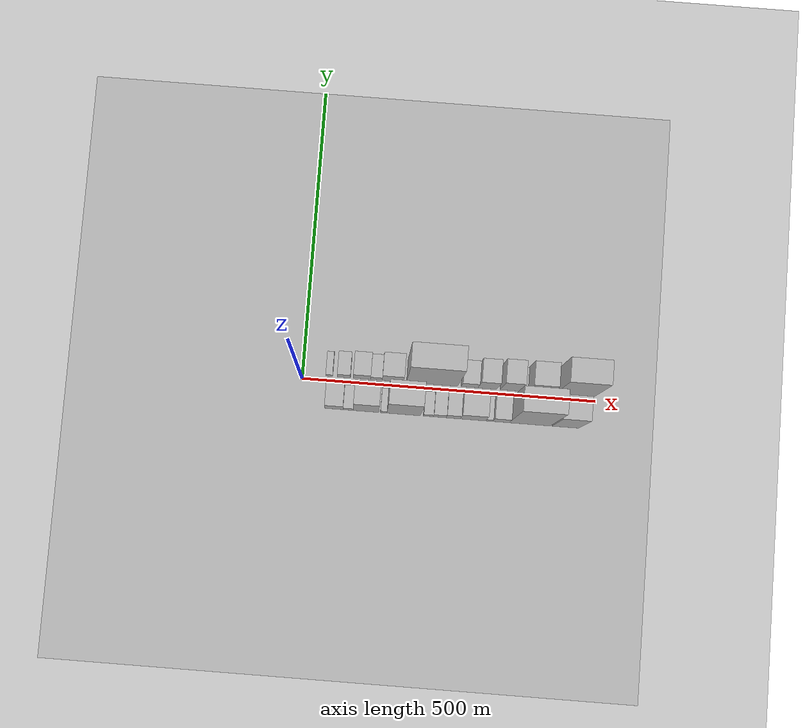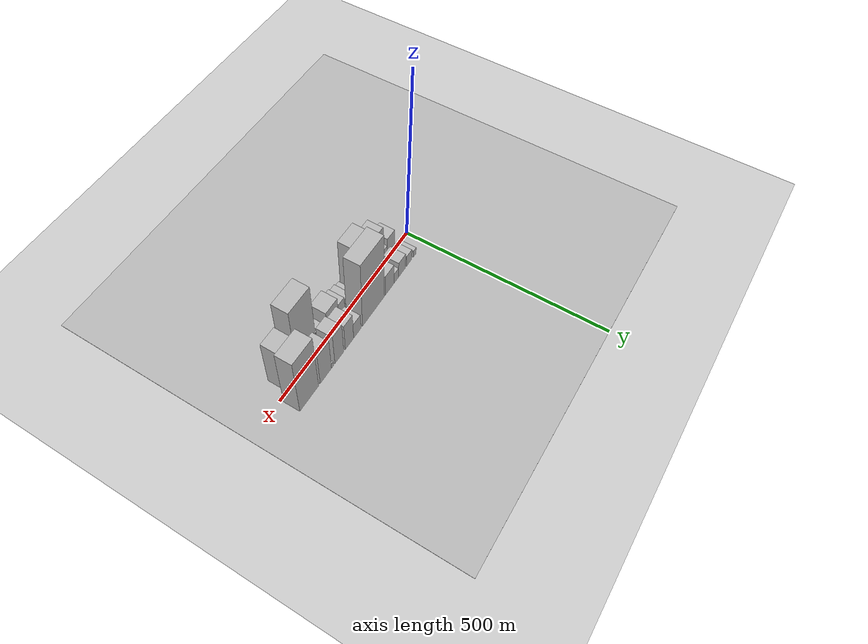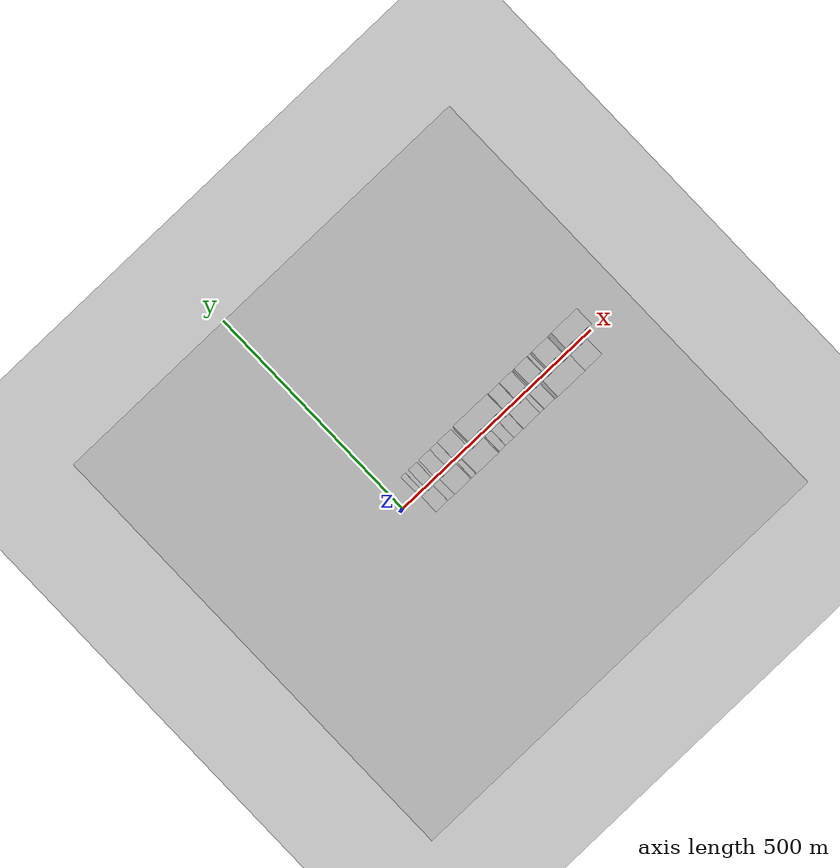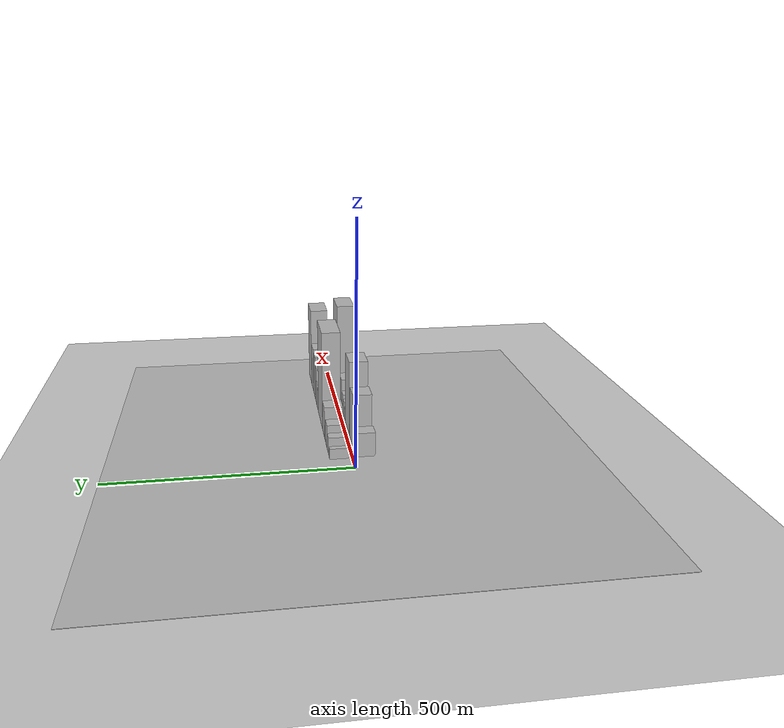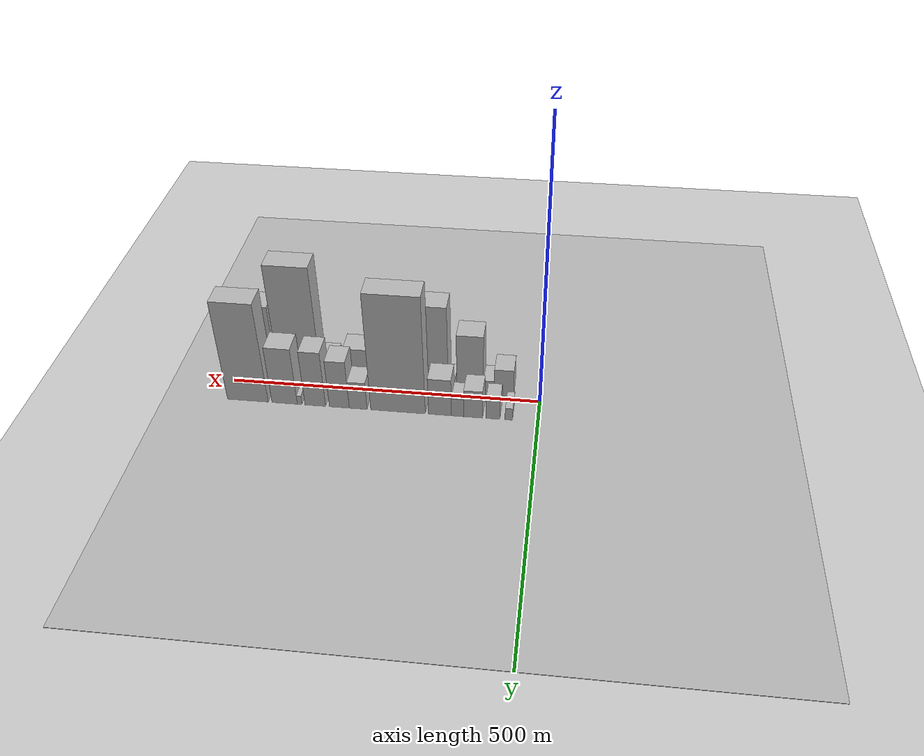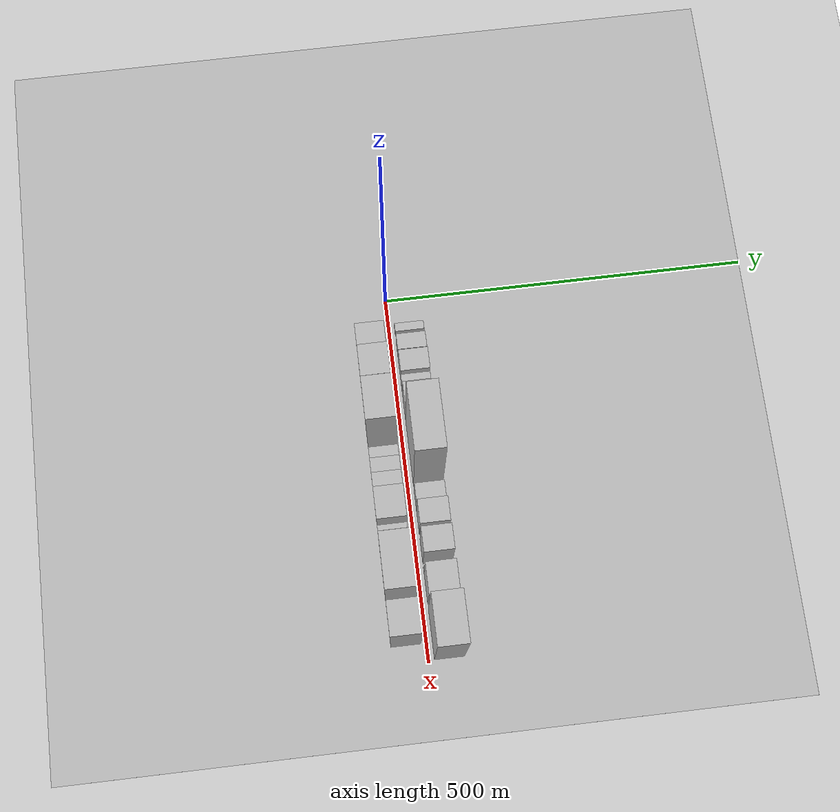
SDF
<?xml version="1.0" encoding="utf-8"?>

<sdf version="1.6">

   <world name="default">

      <gui fullscreen="0">

         <camera name="user_camera">

            <pose>-15 0 4.57585 0 0 0</pose>

            <view_controller>orbit</view_controller>

         </camera>

      </gui>

      <scene>

         <sky>

           <clouds>

             <speed>12</speed>

           </clouds>

         </sky>

         <ambient>0.4 0.4 0.4 1</ambient>

         <background>0.7 0.7 0.7 1</background>

         <shadows>1</shadows>

      </scene>

      <gravity>0 0 -9.8066</gravity>

      <magnetic_field>6e-06 2.3e-05 -4.2e-05</magnetic_field>

      <physics default="0" name="default_physics" type="ode">

         <ode>

            <solver>

               <type>quick</type>

               <iters>10</iters>

               <sor>1.0</sor>

               <use_dynamic_moi_rescaling>0</use_dynamic_moi_rescaling>

            </solver>

            <constraints>

               <cfm>0</cfm>

               <erp>0.2</erp>

               <contact_max_correcting_vel>100</contact_max_correcting_vel>

               <contact_surface_layer>0.001</contact_surface_layer>

            </constraints>

         </ode>

         <max_step_size>0.004</max_step_size>

         <real_time_factor>1</real_time_factor>

         <real_time_update_rate>250</real_time_update_rate>

      </physics>

      <light name="sun" type="directional">

         <cast_shadows>1</cast_shadows>

         <pose>0 0 10 0 0 0</pose>

         <diffuse>0.8 0.8 0.8 1</diffuse>

         <specular>0.2 0.2 0.2 1</specular>

         <attenuation>

            <range>1000</range>

            <constant>0.9</constant>

            <linear>0.01</linear>

            <quadratic>0.001</quadratic>

         </attenuation>

         <direction>-0.5 0.1 -0.9</direction>

      </light>

      <include>

         <name>ground_plane_1</name>

         <uri>model://HANNAS_ground_plane</uri>

         <pose>0 0 0  0 0 0</pose>

      </include>

      <include>

         <name>ground_plane_2</name>

         <uri>model://HANNAS_ground_plane</uri>

         <pose>100 0 0  0 0 0</pose>

      </include>

      <model name="building_1">

         <static>1</static>

         <pose frame="">45.8817 27.5000 0 0.000000 0.000000 1.570796</pose>

         <link name="link">

            <pose frame="">0 0 12.00 0 0 0</pose>

            <collision name="collision">

               <geometry>

                  <box>

                     <size>40.0000 11.7634 24.0000</size>

                  </box>

               </geometry>

               <max_contacts>10</max_contacts>

               <surface>

                  <contact>

                     <ode/>

                  </contact>

                  <bounce/>

                  <friction>

                     <torsional>

                        <ode/>

                     </torsional>

                     <ode/>

                  </friction>

               </surface>

            </collision>

            <visual name="visual">

               <cast_shadows>0</cast_shadows>

               <geometry>

                  <box>

                     <size>40.0000 11.7634 24.0000</size>

                  </box>

               </geometry>

               <material>

                  <script>

                     <uri>model://HANNAS_wall/materials/scripts</uri>

                     <uri>model://HANNAS_wall/materials/textures</uri>

                     <name>vrc/HANNAS_wall</name>

                  </script>

               </material>

            </visual>

            <self_collide>0</self_collide>

            <enable_wind>0</enable_wind>

            <kinematic>0</kinematic>

         </link>

      </model>

      <model name="building_2">

         <static>1</static>

         <pose frame="">70.8837 27.5000 0 0.000000 0.000000 1.570796</pose>

         <link name="link">

            <pose frame="">0 0 19.50 0 0 0</pose>

            <collision name="collision">

               <geometry>

                  <box>

                     <size>40.0000 22.2405 39.0000</size>

                  </box>

               </geometry>

               <max_contacts>10</max_contacts>

               <surface>

                  <contact>

                     <ode/>

                  </contact>

                  <bounce/>

                  <friction>

                     <torsional>

                        <ode/>

                     </torsional>

                     <ode/>

                  </friction>

               </surface>

            </collision>

            <visual name="visual">

               <cast_shadows>0</cast_shadows>

               <geometry>

                  <box>

                     <size>40.0000 22.2405 39.0000</size>

                  </box>

               </geometry>

               <material>

                  <script>

                     <uri>model://HANNAS_wall/materials/scripts</uri>

                     <uri>model://HANNAS_wall/materials/textures</uri>

                     <name>vrc/HANNAS_wall</name>

                  </script>

               </material>

            </visual>

            <self_collide>0</self_collide>

            <enable_wind>0</enable_wind>

            <kinematic>0</kinematic>

         </link>

      </model>

      <model name="building_3">

         <static>1</static>

         <pose frame="">101.7280 27.5000 0 0.000000 0.000000 1.570796</pose>

         <link name="link">

            <pose frame="">0 0 27.00 0 0 0</pose>

            <collision name="collision">

               <geometry>

                  <box>

                     <size>40.0000 29.4482 54.0000</size>

                  </box>

               </geometry>

               <max_contacts>10</max_contacts>

               <surface>

                  <contact>

                     <ode/>

                  </contact>

                  <bounce/>

                  <friction>

                     <torsional>

                        <ode/>

                     </torsional>

                     <ode/>

                  </friction>

               </surface>

            </collision>

            <visual name="visual">

               <cast_shadows>0</cast_shadows>

               <geometry>

                  <box>

                     <size>40.0000 29.4482 54.0000</size>

                  </box>

               </geometry>

               <material>

                  <script>

                     <uri>model://HANNAS_wall/materials/scripts</uri>

                     <uri>model://HANNAS_wall/materials/textures</uri>

                     <name>vrc/HANNAS_wall</name>

                  </script>

               </material>

            </visual>

            <self_collide>0</self_collide>

            <enable_wind>0</enable_wind>

            <kinematic>0</kinematic>

         </link>

      </model>

      <model name="building_4">

         <static>1</static>

         <pose frame="">126.2470 27.5000 0 0.000000 0.000000 1.570796</pose>

         <link name="link">

            <pose frame="">0 0 18.00 0 0 0</pose>

            <collision name="collision">

               <geometry>

                  <box>

                     <size>40.0000 19.5898 36.0000</size>

                  </box>

               </geometry>

               <max_contacts>10</max_contacts>

               <surface>

                  <contact>

                     <ode/>

                  </contact>

                  <bounce/>

                  <friction>

                     <torsional>

                        <ode/>

                     </torsional>

                     <ode/>

                  </friction>

               </surface>

            </collision>

            <visual name="visual">

               <cast_shadows>0</cast_shadows>

               <geometry>

                  <box>

                     <size>40.0000 19.5898 36.0000</size>

                  </box>

               </geometry>

               <material>

                  <script>

                     <uri>model://HANNAS_wall/materials/scripts</uri>

                     <uri>model://HANNAS_wall/materials/textures</uri>

                     <name>vrc/HANNAS_wall</name>

                  </script>

               </material>

            </visual>

            <self_collide>0</self_collide>

            <enable_wind>0</enable_wind>

            <kinematic>0</kinematic>

         </link>

      </model>

      <model name="building_5">

         <static>1</static>

         <pose frame="">154.2567 27.5000 0 0.000000 0.000000 1.570796</pose>

         <link name="link">

            <pose frame="">0 0 36.00 0 0 0</pose>

            <collision name="collision">

               <geometry>

                  <box>

                     <size>40.0000 36.4296 72.0000</size>

                  </box>

               </geometry>

               <max_contacts>10</max_contacts>

               <surface>

                  <contact>

                     <ode/>

                  </contact>

                  <bounce/>

                  <friction>

                     <torsional>

                        <ode/>

                     </torsional>

                     <ode/>

                  </friction>

               </surface>

            </collision>

            <visual name="visual">

               <cast_shadows>0</cast_shadows>

               <geometry>

                  <box>

                     <size>40.0000 36.4296 72.0000</size>

                  </box>

               </geometry>

               <material>

                  <script>

                     <uri>model://HANNAS_wall/materials/scripts</uri>

                     <uri>model://HANNAS_wall/materials/textures</uri>

                     <name>vrc/HANNAS_wall</name>

                  </script>

               </material>

            </visual>

            <self_collide>0</self_collide>

            <enable_wind>0</enable_wind>

            <kinematic>0</kinematic>

         </link>

      </model>

      <model name="building_6">

         <static>1</static>

         <pose frame="">221.0093 27.5000 0 0.000000 0.000000 1.570796</pose>

         <link name="link">

            <pose frame="">0 0 112.50 0 0 0</pose>

            <collision name="collision">

               <geometry>

                  <box>

                     <size>40.0000 87.0757 225.0000</size>

                  </box>

               </geometry>

               <max_contacts>10</max_contacts>

               <surface>

                  <contact>

                     <ode/>

                  </contact>

                  <bounce/>

                  <friction>

                     <torsional>

                        <ode/>

                     </torsional>

                     <ode/>

                  </friction>

               </surface>

            </collision>

            <visual name="visual">

               <cast_shadows>0</cast_shadows>

               <geometry>

                  <box>

                     <size>40.0000 87.0757 225.0000</size>

                  </box>

               </geometry>

               <material>

                  <script>

                     <uri>model://HANNAS_wall/materials/scripts</uri>

                     <uri>model://HANNAS_wall/materials/textures</uri>

                     <name>vrc/HANNAS_wall</name>

                  </script>

               </material>

            </visual>

            <self_collide>0</self_collide>

            <enable_wind>0</enable_wind>

            <kinematic>0</kinematic>

         </link>

      </model>

      <model name="building_7">

         <static>1</static>

         <pose frame="">284.8641 27.5000 0 0.000000 0.000000 1.570796</pose>

         <link name="link">

            <pose frame="">0 0 27.00 0 0 0</pose>

            <collision name="collision">

               <geometry>

                  <box>

                     <size>40.0000 28.6338 54.0000</size>

                  </box>

               </geometry>

               <max_contacts>10</max_contacts>

               <surface>

                  <contact>

                     <ode/>

                  </contact>

                  <bounce/>

                  <friction>

                     <torsional>

                        <ode/>

                     </torsional>

                     <ode/>

                  </friction>

               </surface>

            </collision>

            <visual name="visual">

               <cast_shadows>0</cast_shadows>

               <geometry>

                  <box>

                     <size>40.0000 28.6338 54.0000</size>

                  </box>

               </geometry>

               <material>

                  <script>

                     <uri>model://HANNAS_wall/materials/scripts</uri>

                     <uri>model://HANNAS_wall/materials/textures</uri>

                     <name>vrc/HANNAS_wall</name>

                  </script>

               </material>

            </visual>

            <self_collide>0</self_collide>

            <enable_wind>0</enable_wind>

            <kinematic>0</kinematic>

         </link>

      </model>

      <model name="building_8">

         <static>1</static>

         <pose frame="">315.1698 27.5000 0 0.000000 0.000000 1.570796</pose>

         <link name="link">

            <pose frame="">0 0 46.50 0 0 0</pose>

            <collision name="collision">

               <geometry>

                  <box>

                     <size>40.0000 31.9778 93.0000</size>

                  </box>

               </geometry>

               <max_contacts>10</max_contacts>

               <surface>

                  <contact>

                     <ode/>

                  </contact>

                  <bounce/>

                  <friction>

                     <torsional>

                        <ode/>

                     </torsional>

                     <ode/>

                  </friction>

               </surface>

            </collision>

            <visual name="visual">

               <cast_shadows>0</cast_shadows>

               <geometry>

                  <box>

                     <size>40.0000 31.9778 93.0000</size>

                  </box>

               </geometry>

               <material>

                  <script>

                     <uri>model://HANNAS_wall/materials/scripts</uri>

                     <uri>model://HANNAS_wall/materials/textures</uri>

                     <name>vrc/HANNAS_wall</name>

                  </script>

               </material>

            </visual>

            <self_collide>0</self_collide>

            <enable_wind>0</enable_wind>

            <kinematic>0</kinematic>

         </link>

      </model>

      <model name="building_9">

         <static>1</static>

         <pose frame="">353.8377 27.5000 0 0.000000 0.000000 1.570796</pose>

         <link name="link">

            <pose frame="">0 0 54.00 0 0 0</pose>

            <collision name="collision">

               <geometry>

                  <box>

                     <size>40.0000 33.3580 108.0000</size>

                  </box>

               </geometry>

               <max_contacts>10</max_contacts>

               <surface>

                  <contact>

                     <ode/>

                  </contact>

                  <bounce/>

                  <friction>

                     <torsional>

                        <ode/>

                     </torsional>

                     <ode/>

                  </friction>

               </surface>

            </collision>

            <visual name="visual">

               <cast_shadows>0</cast_shadows>

               <geometry>

                  <box>

                     <size>40.0000 33.3580 108.0000</size>

                  </box>

               </geometry>

               <material>

                  <script>

                     <uri>model://HANNAS_wall/materials/scripts</uri>

                     <uri>model://HANNAS_wall/materials/textures</uri>

                     <name>vrc/HANNAS_wall</name>

                  </script>

               </material>

            </visual>

            <self_collide>0</self_collide>

            <enable_wind>0</enable_wind>

            <kinematic>0</kinematic>

         </link>

      </model>

      <model name="building_10">

         <static>1</static>

         <pose frame="">379.2483 27.5000 0 0.000000 0.000000 1.570796</pose>

         <link name="link">

            <pose frame="">0 0 9.00 0 0 0</pose>

            <collision name="collision">

               <geometry>

                  <box>

                     <size>40.0000 7.4632 18.0000</size>

                  </box>

               </geometry>

               <max_contacts>10</max_contacts>

               <surface>

                  <contact>

                     <ode/>

                  </contact>

                  <bounce/>

                  <friction>

                     <torsional>

                        <ode/>

                     </torsional>

                     <ode/>

                  </friction>

               </surface>

            </collision>

            <visual name="visual">

               <cast_shadows>0</cast_shadows>

               <geometry>

                  <box>

                     <size>40.0000 7.4632 18.0000</size>

                  </box>

               </geometry>

               <material>

                  <script>

                     <uri>model://HANNAS_wall/materials/scripts</uri>

                     <uri>model://HANNAS_wall/materials/textures</uri>

                     <name>vrc/HANNAS_wall</name>

                  </script>

               </material>

            </visual>

            <self_collide>0</self_collide>

            <enable_wind>0</enable_wind>

            <kinematic>0</kinematic>

         </link>

      </model>

      <model name="building_11">

         <static>1</static>

         <pose frame="">403.6508 27.5000 0 0.000000 0.000000 1.570796</pose>

         <link name="link">

            <pose frame="">0 0 55.50 0 0 0</pose>

            <collision name="collision">

               <geometry>

                  <box>

                     <size>40.0000 41.3420 111.0000</size>

                  </box>

               </geometry>

               <max_contacts>10</max_contacts>

               <surface>

                  <contact>

                     <ode/>

                  </contact>

                  <bounce/>

                  <friction>

                     <torsional>

                        <ode/>

                     </torsional>

                     <ode/>

                  </friction>

               </surface>

            </collision>

            <visual name="visual">

               <cast_shadows>0</cast_shadows>

               <geometry>

                  <box>

                     <size>40.0000 41.3420 111.0000</size>

                  </box>

               </geometry>

               <material>

                  <script>

                     <uri>model://HANNAS_wall/materials/scripts</uri>

                     <uri>model://HANNAS_wall/materials/textures</uri>

                     <name>vrc/HANNAS_wall</name>

                  </script>

               </material>

            </visual>

            <self_collide>0</self_collide>

            <enable_wind>0</enable_wind>

            <kinematic>0</kinematic>

         </link>

      </model>

      <model name="building_12">

         <static>1</static>

         <pose frame="">463.6004 27.5000 0 0.000000 0.000000 1.570796</pose>

         <link name="link">

            <pose frame="">0 0 96.00 0 0 0</pose>

            <collision name="collision">

               <geometry>

                  <box>

                     <size>40.0000 66.5572 192.0000</size>

                  </box>

               </geometry>

               <max_contacts>10</max_contacts>

               <surface>

                  <contact>

                     <ode/>

                  </contact>

                  <bounce/>

                  <friction>

                     <torsional>

                        <ode/>

                     </torsional>

                     <ode/>

                  </friction>

               </surface>

            </collision>

            <visual name="visual">

               <cast_shadows>0</cast_shadows>

               <geometry>

                  <box>

                     <size>40.0000 66.5572 192.0000</size>

                  </box>

               </geometry>

               <material>

                  <script>

                     <uri>model://HANNAS_wall/materials/scripts</uri>

                     <uri>model://HANNAS_wall/materials/textures</uri>

                     <name>vrc/HANNAS_wall</name>

                  </script>

               </material>

            </visual>

            <self_collide>0</self_collide>

            <enable_wind>0</enable_wind>

            <kinematic>0</kinematic>

         </link>

      </model>

      <model name="building_13">

         <static>1</static>

         <pose frame="">58.5326 -27.5000 0 0.000000 0.000000 1.570796</pose>

         <link name="link">

            <pose frame="">0 0 27.00 0 0 0</pose>

            <collision name="collision">

               <geometry>

                  <box>

                     <size>40.0000 31.0651 54.0000</size>

                  </box>

               </geometry>

               <max_contacts>10</max_contacts>

               <surface>

                  <contact>

                     <ode/>

                  </contact>

                  <bounce/>

                  <friction>

                     <torsional>

                        <ode/>

                     </torsional>

                     <ode/>

                  </friction>

               </surface>

            </collision>

            <visual name="visual">

               <cast_shadows>0</cast_shadows>

               <geometry>

                  <box>

                     <size>40.0000 31.0651 54.0000</size>

                  </box>

               </geometry>

               <material>

                  <script>

                     <uri>model://HANNAS_wall/materials/scripts</uri>

                     <uri>model://HANNAS_wall/materials/textures</uri>

                     <name>vrc/HANNAS_wall</name>

                  </script>

               </material>

            </visual>

            <self_collide>0</self_collide>

            <enable_wind>0</enable_wind>

            <kinematic>0</kinematic>

         </link>

      </model>

      <model name="building_14">

         <static>1</static>

         <pose frame="">82.8570 -27.5000 0 0.000000 0.000000 1.570796</pose>

         <link name="link">

            <pose frame="">0 0 15.00 0 0 0</pose>

            <collision name="collision">

               <geometry>

                  <box>

                     <size>40.0000 17.5837 30.0000</size>

                  </box>

               </geometry>

               <max_contacts>10</max_contacts>

               <surface>

                  <contact>

                     <ode/>

                  </contact>

                  <bounce/>

                  <friction>

                     <torsional>

                        <ode/>

                     </torsional>

                     <ode/>

                  </friction>

               </surface>

            </collision>

            <visual name="visual">

               <cast_shadows>0</cast_shadows>

               <geometry>

                  <box>

                     <size>40.0000 17.5837 30.0000</size>

                  </box>

               </geometry>

               <material>

                  <script>

                     <uri>model://HANNAS_wall/materials/scripts</uri>

                     <uri>model://HANNAS_wall/materials/textures</uri>

                     <name>vrc/HANNAS_wall</name>

                  </script>

               </material>

            </visual>

            <self_collide>0</self_collide>

            <enable_wind>0</enable_wind>

            <kinematic>0</kinematic>

         </link>

      </model>

      <model name="building_15">

         <static>1</static>

         <pose frame="">112.9578 -27.5000 0 0.000000 0.000000 1.570796</pose>

         <link name="link">

            <pose frame="">0 0 58.50 0 0 0</pose>

            <collision name="collision">

               <geometry>

                  <box>

                     <size>40.0000 42.6180 117.0000</size>

                  </box>

               </geometry>

               <max_contacts>10</max_contacts>

               <surface>

                  <contact>

                     <ode/>

                  </contact>

                  <bounce/>

                  <friction>

                     <torsional>

                        <ode/>

                     </torsional>

                     <ode/>

                  </friction>

               </surface>

            </collision>

            <visual name="visual">

               <cast_shadows>0</cast_shadows>

               <geometry>

                  <box>

                     <size>40.0000 42.6180 117.0000</size>

                  </box>

               </geometry>

               <material>

                  <script>

                     <uri>model://HANNAS_wall/materials/scripts</uri>

                     <uri>model://HANNAS_wall/materials/textures</uri>

                     <name>vrc/HANNAS_wall</name>

                  </script>

               </material>

            </visual>

            <self_collide>0</self_collide>

            <enable_wind>0</enable_wind>

            <kinematic>0</kinematic>

         </link>

      </model>

      <model name="building_16">

         <static>1</static>

         <pose frame="">142.7805 -27.5000 0 0.000000 0.000000 1.570796</pose>

         <link name="link">

            <pose frame="">0 0 13.50 0 0 0</pose>

            <collision name="collision">

               <geometry>

                  <box>

                     <size>40.0000 11.0274 27.0000</size>

                  </box>

               </geometry>

               <max_contacts>10</max_contacts>

               <surface>

                  <contact>

                     <ode/>

                  </contact>

                  <bounce/>

                  <friction>

                     <torsional>

                        <ode/>

                     </torsional>

                     <ode/>

                  </friction>

               </surface>

            </collision>

            <visual name="visual">

               <cast_shadows>0</cast_shadows>

               <geometry>

                  <box>

                     <size>40.0000 11.0274 27.0000</size>

                  </box>

               </geometry>

               <material>

                  <script>

                     <uri>model://HANNAS_wall/materials/scripts</uri>

                     <uri>model://HANNAS_wall/materials/textures</uri>

                     <name>vrc/HANNAS_wall</name>

                  </script>

               </material>

            </visual>

            <self_collide>0</self_collide>

            <enable_wind>0</enable_wind>

            <kinematic>0</kinematic>

         </link>

      </model>

      <model name="building_17">

         <static>1</static>

         <pose frame="">176.7688 -27.5000 0 0.000000 0.000000 1.570796</pose>

         <link name="link">

            <pose frame="">0 0 84.00 0 0 0</pose>

            <collision name="collision">

               <geometry>

                  <box>

                     <size>40.0000 56.9493 168.0000</size>

                  </box>

               </geometry>

               <max_contacts>10</max_contacts>

               <surface>

                  <contact>

                     <ode/>

                  </contact>

                  <bounce/>

                  <friction>

                     <torsional>

                        <ode/>

                     </torsional>

                     <ode/>

                  </friction>

               </surface>

            </collision>

            <visual name="visual">

               <cast_shadows>0</cast_shadows>

               <geometry>

                  <box>

                     <size>40.0000 56.9493 168.0000</size>

                  </box>

               </geometry>

               <material>

                  <script>

                     <uri>model://HANNAS_wall/materials/scripts</uri>

                     <uri>model://HANNAS_wall/materials/textures</uri>

                     <name>vrc/HANNAS_wall</name>

                  </script>

               </material>

            </visual>

            <self_collide>0</self_collide>

            <enable_wind>0</enable_wind>

            <kinematic>0</kinematic>

         </link>

      </model>

      <model name="building_18">

         <static>1</static>

         <pose frame="">218.6372 -27.5000 0 0.000000 0.000000 1.570796</pose>

         <link name="link">

            <pose frame="">0 0 15.00 0 0 0</pose>

            <collision name="collision">

               <geometry>

                  <box>

                     <size>40.0000 16.7874 30.0000</size>

                  </box>

               </geometry>

               <max_contacts>10</max_contacts>

               <surface>

                  <contact>

                     <ode/>

                  </contact>

                  <bounce/>

                  <friction>

                     <torsional>

                        <ode/>

                     </torsional>

                     <ode/>

                  </friction>

               </surface>

            </collision>

            <visual name="visual">

               <cast_shadows>0</cast_shadows>

               <geometry>

                  <box>

                     <size>40.0000 16.7874 30.0000</size>

                  </box>

               </geometry>

               <material>

                  <script>

                     <uri>model://HANNAS_wall/materials/scripts</uri>

                     <uri>model://HANNAS_wall/materials/textures</uri>

                     <name>vrc/HANNAS_wall</name>

                  </script>

               </material>

            </visual>

            <self_collide>0</self_collide>

            <enable_wind>0</enable_wind>

            <kinematic>0</kinematic>

         </link>

      </model>

      <model name="building_19">

         <static>1</static>

         <pose frame="">237.8213 -27.5000 0 0.000000 0.000000 1.570796</pose>

         <link name="link">

            <pose frame="">0 0 19.50 0 0 0</pose>

            <collision name="collision">

               <geometry>

                  <box>

                     <size>40.0000 21.5809 39.0000</size>

                  </box>

               </geometry>

               <max_contacts>10</max_contacts>

               <surface>

                  <contact>

                     <ode/>

                  </contact>

                  <bounce/>

                  <friction>

                     <torsional>

                        <ode/>

                     </torsional>

                     <ode/>

                  </friction>

               </surface>

            </collision>

            <visual name="visual">

               <cast_shadows>0</cast_shadows>

               <geometry>

                  <box>

                     <size>40.0000 21.5809 39.0000</size>

                  </box>

               </geometry>

               <material>

                  <script>

                     <uri>model://HANNAS_wall/materials/scripts</uri>

                     <uri>model://HANNAS_wall/materials/textures</uri>

                     <name>vrc/HANNAS_wall</name>

                  </script>

               </material>

            </visual>

            <self_collide>0</self_collide>

            <enable_wind>0</enable_wind>

            <kinematic>0</kinematic>

         </link>

      </model>

      <model name="building_20">

         <static>1</static>

         <pose frame="">260.7178 -27.5000 0 0.000000 0.000000 1.570796</pose>

         <link name="link">

            <pose frame="">0 0 24.00 0 0 0</pose>

            <collision name="collision">

               <geometry>

                  <box>

                     <size>40.0000 24.2121 48.0000</size>

                  </box>

               </geometry>

               <max_contacts>10</max_contacts>

               <surface>

                  <contact>

                     <ode/>

                  </contact>

                  <bounce/>

                  <friction>

                     <torsional>

                        <ode/>

                     </torsional>

                     <ode/>

                  </friction>

               </surface>

            </collision>

            <visual name="visual">

               <cast_shadows>0</cast_shadows>

               <geometry>

                  <box>

                     <size>40.0000 24.2121 48.0000</size>

                  </box>

               </geometry>

               <material>

                  <script>

                     <uri>model://HANNAS_wall/materials/scripts</uri>

                     <uri>model://HANNAS_wall/materials/textures</uri>

                     <name>vrc/HANNAS_wall</name>

                  </script>

               </material>

            </visual>

            <self_collide>0</self_collide>

            <enable_wind>0</enable_wind>

            <kinematic>0</kinematic>

         </link>

      </model>

      <model name="building_21">

         <static>1</static>

         <pose frame="">294.3731 -27.5000 0 0.000000 0.000000 1.570796</pose>

         <link name="link">

            <pose frame="">0 0 37.50 0 0 0</pose>

            <collision name="collision">

               <geometry>

                  <box>

                     <size>40.0000 43.0985 75.0000</size>

                  </box>

               </geometry>

               <max_contacts>10</max_contacts>

               <surface>

                  <contact>

                     <ode/>

                  </contact>

                  <bounce/>

                  <friction>

                     <torsional>

                        <ode/>

                     </torsional>

                     <ode/>

                  </friction>

               </surface>

            </collision>

            <visual name="visual">

               <cast_shadows>0</cast_shadows>

               <geometry>

                  <box>

                     <size>40.0000 43.0985 75.0000</size>

                  </box>

               </geometry>

               <material>

                  <script>

                     <uri>model://HANNAS_wall/materials/scripts</uri>

                     <uri>model://HANNAS_wall/materials/textures</uri>

                     <name>vrc/HANNAS_wall</name>

                  </script>

               </material>

            </visual>

            <self_collide>0</self_collide>

            <enable_wind>0</enable_wind>

            <kinematic>0</kinematic>

         </link>

      </model>

      <model name="building_22">

         <static>1</static>

         <pose frame="">321.9104 -27.5000 0 0.000000 0.000000 1.570796</pose>

         <link name="link">

            <pose frame="">0 0 13.50 0 0 0</pose>

            <collision name="collision">

               <geometry>

                  <box>

                     <size>40.0000 11.9760 27.0000</size>

                  </box>

               </geometry>

               <max_contacts>10</max_contacts>

               <surface>

                  <contact>

                     <ode/>

                  </contact>

                  <bounce/>

                  <friction>

                     <torsional>

                        <ode/>

                     </torsional>

                     <ode/>

                  </friction>

               </surface>

            </collision>

            <visual name="visual">

               <cast_shadows>0</cast_shadows>

               <geometry>

                  <box>

                     <size>40.0000 11.9760 27.0000</size>

                  </box>

               </geometry>

               <material>

                  <script>

                     <uri>model://HANNAS_wall/materials/scripts</uri>

                     <uri>model://HANNAS_wall/materials/textures</uri>

                     <name>vrc/HANNAS_wall</name>

                  </script>

               </material>

            </visual>

            <self_collide>0</self_collide>

            <enable_wind>0</enable_wind>

            <kinematic>0</kinematic>

         </link>

      </model>

      <model name="building_23">

         <static>1</static>

         <pose frame="">341.8908 -27.5000 0 0.000000 0.000000 1.570796</pose>

         <link name="link">

            <pose frame="">0 0 27.00 0 0 0</pose>

            <collision name="collision">

               <geometry>

                  <box>

                     <size>40.0000 27.9848 54.0000</size>

                  </box>

               </geometry>

               <max_contacts>10</max_contacts>

               <surface>

                  <contact>

                     <ode/>

                  </contact>

                  <bounce/>

                  <friction>

                     <torsional>

                        <ode/>

                     </torsional>

                     <ode/>

                  </friction>

               </surface>

            </collision>

            <visual name="visual">

               <cast_shadows>0</cast_shadows>

               <geometry>

                  <box>

                     <size>40.0000 27.9848 54.0000</size>

                  </box>

               </geometry>

               <material>

                  <script>

                     <uri>model://HANNAS_wall/materials/scripts</uri>

                     <uri>model://HANNAS_wall/materials/textures</uri>

                     <name>vrc/HANNAS_wall</name>

                  </script>

               </material>

            </visual>

            <self_collide>0</self_collide>

            <enable_wind>0</enable_wind>

            <kinematic>0</kinematic>

         </link>

      </model>

      <model name="building_24">

         <static>1</static>

         <pose frame="">390.9323 -27.5000 0 0.000000 0.000000 1.570796</pose>

         <link name="link">

            <pose frame="">0 0 112.50 0 0 0</pose>

            <collision name="collision">

               <geometry>

                  <box>

                     <size>40.0000 70.0983 225.0000</size>

                  </box>

               </geometry>

               <max_contacts>10</max_contacts>

               <surface>

                  <contact>

                     <ode/>

                  </contact>

                  <bounce/>

                  <friction>

                     <torsional>

                        <ode/>

                     </torsional>

                     <ode/>

                  </friction>

               </surface>

            </collision>

            <visual name="visual">

               <cast_shadows>0</cast_shadows>

               <geometry>

                  <box>

                     <size>40.0000 70.0983 225.0000</size>

                  </box>

               </geometry>

               <material>

                  <script>

                     <uri>model://HANNAS_wall/materials/scripts</uri>

                     <uri>model://HANNAS_wall/materials/textures</uri>

                     <name>vrc/HANNAS_wall</name>

                  </script>

               </material>

            </visual>

            <self_collide>0</self_collide>

            <enable_wind>0</enable_wind>

            <kinematic>0</kinematic>

         </link>

      </model>

      <model name="building_25">

         <static>1</static>

         <pose frame="">451.6688 -27.5000 0 0.000000 0.000000 1.570796</pose>

         <link name="link">

            <pose frame="">0 0 73.50 0 0 0</pose>

            <collision name="collision">

               <geometry>

                  <box>

                     <size>40.0000 45.3747 147.0000</size>

                  </box>

               </geometry>

               <max_contacts>10</max_contacts>

               <surface>

                  <contact>

                     <ode/>

                  </contact>

                  <bounce/>

                  <friction>

                     <torsional>

                        <ode/>

                     </torsional>

                     <ode/>

                  </friction>

               </surface>

            </collision>

            <visual name="visual">

               <cast_shadows>0</cast_shadows>

               <geometry>

                  <box>

                     <size>40.0000 45.3747 147.0000</size>

                  </box>

               </geometry>

               <material>

                  <script>

                     <uri>model://HANNAS_wall/materials/scripts</uri>

                     <uri>model://HANNAS_wall/materials/textures</uri>

                     <name>vrc/HANNAS_wall</name>

                  </script>

               </material>

            </visual>

            <self_collide>0</self_collide>

            <enable_wind>0</enable_wind>

            <kinematic>0</kinematic>

         </link>

      </model>

   </world>

</sdf>

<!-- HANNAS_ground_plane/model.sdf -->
<sdf version="1.4">
<model name="HANNAS_ground_plane">
  <static>true</static>
    <link name="link">
      <collision name="collision">
        <geometry>
          <plane>
            <normal>0 0 1</normal>
            <size>1000 1000</size>
          </plane>
        </geometry>
        <surface>
          <friction>
            <ode>
              <mu>100</mu>
              <mu2>50</mu2>
            </ode>
          </friction>
        </surface>
      </collision>
      <visual name="visual">
        <cast_shadows>false</cast_shadows>
        <geometry>
          <plane>
            <normal>0 0 1</normal>
            <size>1000 1000</size>
          </plane>
        </geometry>
        <material>
          <script>
            <uri>model://HANNAS_ground_plane/materials/scripts/HANNAS_ground_plane.material</uri>
	    <uri>model://HANNAS_ground_plane/materials/textures</uri>
            <name>HANNASGroundPlane/Image</name>
          </script>
        </material>
      </visual>
    </link>
  </model>
</sdf>
